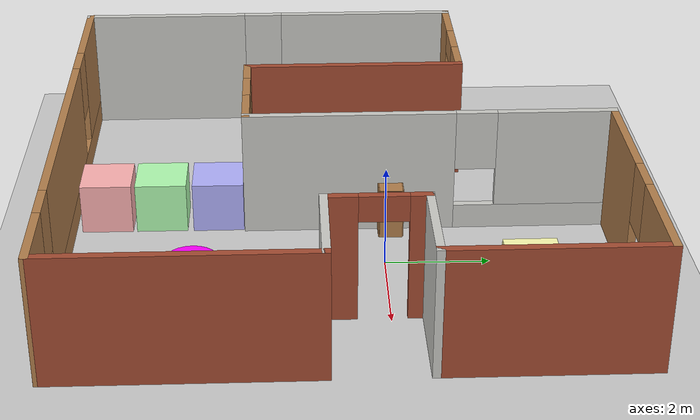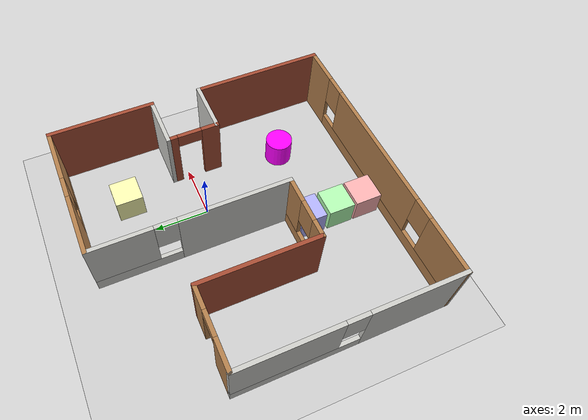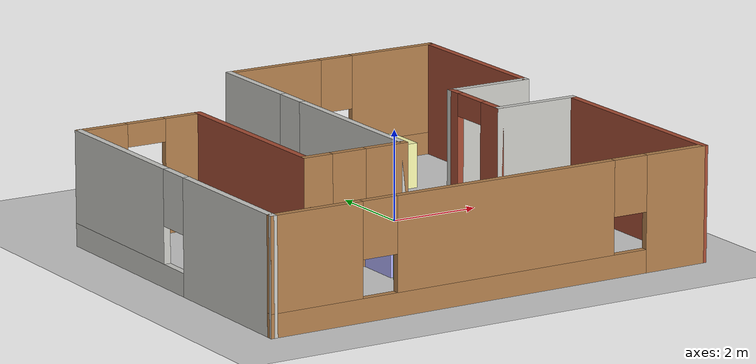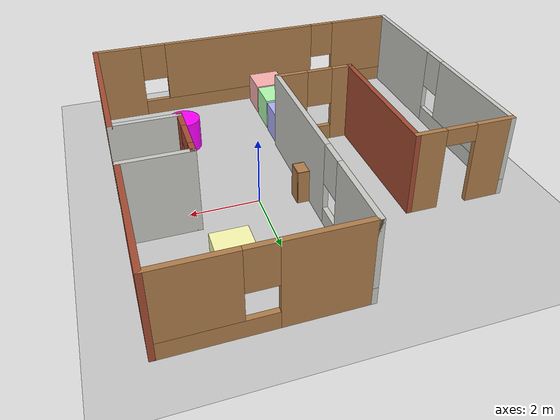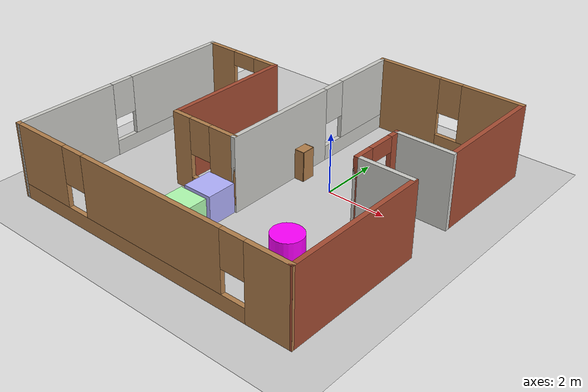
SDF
<sdf version="1.6">
 <world name="default">
  <light name="sun" type="directional">
   <pose>0 0 10 0 -0 0</pose>
   <diffuse>0.8 0.8 0.8 1</diffuse>
   <specular>0.1 0.1 0.1 1</specular>
   <attenuation>
    <range>1000</range>
    <constant>0.9</constant>
    <linear>0.01</linear>
    <quadratic>0.001</quadratic>
   </attenuation>
   <direction>-0.5 0.5 -1</direction>
  </light>
  <model name="ground_plane">
   <static>1</static>
   <link name="link">
    <collision name="collision">
     <geometry><plane><normal>0 0 1</normal><size>100 100</size></plane></geometry>
     <surface><friction><ode><mu>100</mu><mu2>50</mu2></ode></friction></surface>
    </collision>
    <visual name="visual">
     <cast_shadows>0</cast_shadows>
     <geometry><plane><normal>0 0 1</normal><size>100 100</size></plane></geometry>
     <material>
      <script><uri>file://media/materials/scripts/gazebo.material</uri><name>Gazebo/Grey</name></script>
     </material>
    </visual>
   </link>
  </model>
  <gravity>0 0 -9.8</gravity>
  <magnetic_field>6e-06 2.3e-05 -4.2e-05</magnetic_field>
  <atmosphere type="adiabatic"/>
  <physics name="default_physics" default="0" type="ode">
   <max_step_size>0.001</max_step_size>
   <real_time_factor>1</real_time_factor>
   <real_time_update_rate>1000</real_time_update_rate>
  </physics>
  <scene><ambient>0.4 0.4 0.4 1</ambient><background>0.7 0.7 0.7 1</background><shadows>1</shadows></scene>
  <spherical_coordinates>
   <surface_model>EARTH_WGS84</surface_model>
   <latitude_deg>0</latitude_deg>
   <longitude_deg>0</longitude_deg>
   <elevation>0</elevation>
   <heading_deg>0</heading_deg>
  </spherical_coordinates>
  <model name="Untitled">
   <pose>-1.45557 -0.81421 0 0 -0 0</pose>
   <link name="Wall_1">
    <pose>-5.15 -1.37482 0 0 -0 1.5708</pose>
    <visual name="Wall_1_Visual_0">
     <pose>-2.26316 0 1.25 0 -0 0</pose>
     <geometry><box><size>3.47367 0.15 2.5</size></box></geometry>
     <material>
      <script><uri>file://media/materials/scripts/gazebo.material</uri><name>Gazebo/CeilingTiled</name></script>
      <ambient>0.435294 0.796078 0.67451 1</ambient>
     </material>
     <meta><layer>0</layer></meta>
    </visual>
    <collision name="Wall_1_Collision_0">
     <geometry><box><size>3.47367 0.15 2.5</size></box></geometry>
     <pose>-2.26316 0 1.25 0 -0 0</pose>
    </collision>
    <visual name="Wall_1_Visual_1">
     <pose>1.73684 0 0.25 0 -0 0</pose>
     <geometry><box><size>4.52633 0.15 0.5</size></box></geometry>
     <material>
      <script><uri>file://media/materials/scripts/gazebo.material</uri><name>Gazebo/CeilingTiled</name></script>
      <ambient>0.435294 0.796078 0.67451 1</ambient>
     </material>
     <meta><layer>0</layer></meta>
    </visual>
    <collision name="Wall_1_Collision_1">
     <geometry><box><size>4.52633 0.15 0.5</size></box></geometry>
     <pose>1.73684 0 0.25 0 -0 0</pose>
    </collision>
    <visual name="Wall_1_Visual_2">
     <pose>2.13684 0 1.5 0 -0 0</pose>
     <geometry><box><size>3.72633 0.15 2</size></box></geometry>
     <material>
      <script><uri>file://media/materials/scripts/gazebo.material</uri><name>Gazebo/CeilingTiled</name></script>
      <ambient>0.435294 0.796078 0.67451 1</ambient>
     </material>
     <meta><layer>0</layer></meta>
    </visual>
    <collision name="Wall_1_Collision_2">
     <geometry><box><size>3.72633 0.15 2</size></box></geometry>
     <pose>2.13684 0 1.5 0 -0 0</pose>
    </collision>
    <visual name="Wall_1_Visual_3">
     <pose>-0.126327 0 1.9 0 -0 0</pose>
     <geometry><box><size>0.8 0.15 1.2</size></box></geometry>
     <material>
      <script><uri>file://media/materials/scripts/gazebo.material</uri><name>Gazebo/CeilingTiled</name></script>
      <ambient>0.435294 0.796078 0.67451 1</ambient>
     </material>
     <meta><layer>0</layer></meta>
    </visual>
    <collision name="Wall_1_Collision_3">
     <geometry><box><size>0.8 0.15 1.2</size></box></geometry>
     <pose>-0.126327 0 1.9 0 -0 0</pose>
    </collision>
   </link>
   <link name="Wall_10">
    <collision name="Wall_10_Collision">
     <geometry><box><size>2 0.15 2.5</size></box></geometry>
     <pose>0 0 1.25 0 -0 0</pose>
    </collision>
    <visual name="Wall_10_Visual">
     <pose>0 0 1.25 0 -0 0</pose>
     <geometry><box><size>2 0.15 2.5</size></box></geometry>
     <material>
      <script><uri>file://media/materials/scripts/gazebo.material</uri><name>Gazebo/CeilingTiled</name></script>
      <ambient>0.435294 0.796078 0.67451 1</ambient>
     </material>
     <meta><layer>0</layer></meta>
    </visual>
    <pose>4.225 -0.399819 0 0 -0 0</pose>
   </link>
   <link name="Wall_11">
    <collision name="Wall_11_Collision">
     <geometry><box><size>5 0.15 2.5</size></box></geometry>
     <pose>0 0 1.25 0 -0 0</pose>
    </collision>
    <visual name="Wall_11_Visual">
     <pose>0 0 1.25 0 -0 0</pose>
     <geometry><box><size>5 0.15 2.5</size></box></geometry>
     <material>
      <script><uri>file://media/materials/scripts/gazebo.material</uri><name>Gazebo/Bricks</name></script>
      <ambient>0.996078 0.47451 0.0196078 1</ambient>
     </material>
     <meta><layer>0</layer></meta>
    </visual>
    <pose>5.15 -2.82482 0 0 0 -1.5708</pose>
   </link>
   <link name="Wall_12">
    <pose>0 -5.27482 0 0 0 -3.13674</pose>
    <visual name="Wall_12_Visual_0">
     <pose>-4.46894 0 1.25 0 -0 0</pose>
     <geometry><box><size>1.51223 0.15 2.5</size></box></geometry>
     <material>
      <script><uri>file://media/materials/scripts/gazebo.material</uri><name>Gazebo/Wood</name></script>
      <ambient>0.996078 0.47451 0.0196078 1</ambient>
     </material>
     <meta><layer>0</layer></meta>
    </visual>
    <collision name="Wall_12_Collision_0">
     <geometry><box><size>1.51223 0.15 2.5</size></box></geometry>
     <pose>-4.46894 0 1.25 0 -0 0</pose>
    </collision>
    <visual name="Wall_12_Visual_1">
     <pose>0.756117 0 0.25 0 -0 0</pose>
     <geometry><box><size>8.93789 0.15 0.5</size></box></geometry>
     <material>
      <script><uri>file://media/materials/scripts/gazebo.material</uri><name>Gazebo/Wood</name></script>
      <ambient>0.996078 0.47451 0.0196078 1</ambient>
     </material>
     <meta><layer>0</layer></meta>
    </visual>
    <collision name="Wall_12_Collision_1">
     <geometry><box><size>8.93789 0.15 0.5</size></box></geometry>
     <pose>0.756117 0 0.25 0 -0 0</pose>
    </collision>
    <visual name="Wall_12_Visual_2">
     <pose>-0.306587 0 1.5 0 -0 0</pose>
     <geometry><box><size>5.21248 0.15 2</size></box></geometry>
     <material>
      <script><uri>file://media/materials/scripts/gazebo.material</uri><name>Gazebo/Wood</name></script>
      <ambient>0.996078 0.47451 0.0196078 1</ambient>
     </material>
     <meta><layer>0</layer></meta>
    </visual>
    <collision name="Wall_12_Collision_2">
     <geometry><box><size>5.21248 0.15 2</size></box></geometry>
     <pose>-0.306587 0 1.5 0 -0 0</pose>
    </collision>
    <visual name="Wall_12_Visual_3">
     <pose>4.16236 0 1.5 0 -0 0</pose>
     <geometry><box><size>2.12541 0.15 2</size></box></geometry>
     <material>
      <script><uri>file://media/materials/scripts/gazebo.material</uri><name>Gazebo/Wood</name></script>
      <ambient>0.996078 0.47451 0.0196078 1</ambient>
     </material>
     <meta><layer>0</layer></meta>
    </visual>
    <collision name="Wall_12_Collision_3">
     <geometry><box><size>2.12541 0.15 2</size></box></geometry>
     <pose>4.16236 0 1.5 0 -0 0</pose>
    </collision>
    <visual name="Wall_12_Visual_4">
     <pose>-3.31283 0 1.9 0 -0 0</pose>
     <geometry><box><size>0.8 0.15 1.2</size></box></geometry>
     <material>
      <script><uri>file://media/materials/scripts/gazebo.material</uri><name>Gazebo/Wood</name></script>
      <ambient>0.996078 0.47451 0.0196078 1</ambient>
     </material>
     <meta><layer>0</layer></meta>
    </visual>
    <collision name="Wall_12_Collision_4">
     <geometry><box><size>0.8 0.15 1.2</size></box></geometry>
     <pose>-3.31283 0 1.9 0 -0 0</pose>
    </collision>
    <visual name="Wall_12_Visual_5">
     <pose>2.69965 0 1.9 0 -0 0</pose>
     <geometry><box><size>0.8 0.15 1.2</size></box></geometry>
     <material>
      <script><uri>file://media/materials/scripts/gazebo.material</uri><name>Gazebo/Wood</name></script>
      <ambient>0.996078 0.47451 0.0196078 1</ambient>
     </material>
     <meta><layer>0</layer></meta>
    </visual>
    <collision name="Wall_12_Collision_5">
     <geometry><box><size>0.8 0.15 1.2</size></box></geometry>
     <pose>2.69965 0 1.9 0 -0 0</pose>
    </collision>
   </link>
   <link name="Wall_2">
    <pose>-3.725 2.55018 0 0 -0 0</pose>
    <visual name="Wall_2_Visual_0">
     <pose>-0.914343 0 1.25 0 -0 0</pose>
     <geometry><box><size>1.17131 0.15 2.5</size></box></geometry>
     <material>
      <script><uri>file://media/materials/scripts/gazebo.material</uri><name>Gazebo/Wood</name></script>
      <ambient>1 1 1 1</ambient>
     </material>
     <meta><layer>0</layer></meta>
    </visual>
    <collision name="Wall_2_Collision_0">
     <geometry><box><size>1.17131 0.15 2.5</size></box></geometry>
     <pose>-0.914343 0 1.25 0 -0 0</pose>
    </collision>
    <visual name="Wall_2_Visual_1">
     <pose>1.03566 0 1.25 0 -0 0</pose>
     <geometry><box><size>0.928686 0.15 2.5</size></box></geometry>
     <material>
      <script><uri>file://media/materials/scripts/gazebo.material</uri><name>Gazebo/Wood</name></script>
      <ambient>1 1 1 1</ambient>
     </material>
     <meta><layer>0</layer></meta>
    </visual>
    <collision name="Wall_2_Collision_1">
     <geometry><box><size>0.928686 0.15 2.5</size></box></geometry>
     <pose>1.03566 0 1.25 0 -0 0</pose>
    </collision>
    <visual name="Wall_2_Visual_2">
     <pose>0.121314 0 2.25 0 -0 0</pose>
     <geometry><box><size>0.9 0.15 0.5</size></box></geometry>
     <material>
      <script><uri>file://media/materials/scripts/gazebo.material</uri><name>Gazebo/Wood</name></script>
      <ambient>1 1 1 1</ambient>
     </material>
     <meta><layer>0</layer></meta>
    </visual>
    <collision name="Wall_2_Collision_2">
     <geometry><box><size>0.9 0.15 0.5</size></box></geometry>
     <pose>0.121314 0 2.25 0 -0 0</pose>
    </collision>
   </link>
   <link name="Wall_3">
    <collision name="Wall_3_Collision">
     <geometry><box><size>4.5 0.15 2.5</size></box></geometry>
     <pose>0 0 1.25 0 -0 0</pose>
    </collision>
    <visual name="Wall_3_Visual">
     <pose>0 0 1.25 0 -0 0</pose>
     <geometry><box><size>4.5 0.15 2.5</size></box></geometry>
     <material>
      <script><uri>file://media/materials/scripts/gazebo.material</uri><name>Gazebo/Bricks</name></script>
      <ambient>0.435294 0.796078 0.67451 1</ambient>
     </material>
     <meta><layer>0</layer></meta>
    </visual>
    <pose>-2.3 0.375181 0 0 0 -1.5708</pose>
   </link>
   <link name="Wall_4">
    <pose>-1.125 -1.79982 0 0 -0 0</pose>
    <visual name="Wall_4_Visual_0">
     <pose>-0.907234 0 1.25 0 -0 0</pose>
     <geometry><box><size>0.685531 0.15 2.5</size></box></geometry>
     <material>
      <script><uri>file://media/materials/scripts/gazebo.material</uri><name>Gazebo/Wood</name></script>
      <ambient>1 1 1 1</ambient>
     </material>
     <meta><layer>0</layer></meta>
    </visual>
    <collision name="Wall_4_Collision_0">
     <geometry><box><size>0.685531 0.15 2.5</size></box></geometry>
     <pose>-0.907234 0 1.25 0 -0 0</pose>
    </collision>
    <visual name="Wall_4_Visual_1">
     <pose>0.342766 0 0.25 0 -0 0</pose>
     <geometry><box><size>1.81447 0.15 0.5</size></box></geometry>
     <material>
      <script><uri>file://media/materials/scripts/gazebo.material</uri><name>Gazebo/Wood</name></script>
      <ambient>1 1 1 1</ambient>
     </material>
     <meta><layer>0</layer></meta>
    </visual>
    <collision name="Wall_4_Collision_1">
     <geometry><box><size>1.81447 0.15 0.5</size></box></geometry>
     <pose>0.342766 0 0.25 0 -0 0</pose>
    </collision>
    <visual name="Wall_4_Visual_2">
     <pose>0.742766 0 1.5 0 -0 0</pose>
     <geometry><box><size>1.01447 0.15 2</size></box></geometry>
     <material>
      <script><uri>file://media/materials/scripts/gazebo.material</uri><name>Gazebo/Wood</name></script>
      <ambient>1 1 1 1</ambient>
     </material>
     <meta><layer>0</layer></meta>
    </visual>
    <collision name="Wall_4_Collision_2">
     <geometry><box><size>1.01447 0.15 2</size></box></geometry>
     <pose>0.742766 0 1.5 0 -0 0</pose>
    </collision>
    <visual name="Wall_4_Visual_3">
     <pose>-0.164469 0 1.9 0 -0 0</pose>
     <geometry><box><size>0.8 0.15 1.2</size></box></geometry>
     <material>
      <script><uri>file://media/materials/scripts/gazebo.material</uri><name>Gazebo/Wood</name></script>
      <ambient>1 1 1 1</ambient>
     </material>
     <meta><layer>0</layer></meta>
    </visual>
    <collision name="Wall_4_Collision_3">
     <geometry><box><size>0.8 0.15 1.2</size></box></geometry>
     <pose>-0.164469 0 1.9 0 -0 0</pose>
    </collision>
   </link>
   <link name="Wall_5">
    <pose>0.05 1.75018 0 0 -0 1.5708</pose>
    <visual name="Wall_5_Visual_0">
     <pose>-1.56335 0 1.25 0 -0 0</pose>
     <geometry><box><size>4.1233 0.15 2.5</size></box></geometry>
     <material>
      <script><uri>file://media/materials/scripts/gazebo.material</uri><name>Gazebo/CeilingTiled</name></script>
      <ambient>1 0.764706 0.305882 1</ambient>
     </material>
     <meta><layer>0</layer></meta>
    </visual>
    <collision name="Wall_5_Collision_0">
     <geometry><box><size>4.1233 0.15 2.5</size></box></geometry>
     <pose>-1.56335 0 1.25 0 -0 0</pose>
    </collision>
    <visual name="Wall_5_Visual_1">
     <pose>2.06165 0 0.25 0 -0 0</pose>
     <geometry><box><size>3.1267 0.15 0.5</size></box></geometry>
     <material>
      <script><uri>file://media/materials/scripts/gazebo.material</uri><name>Gazebo/CeilingTiled</name></script>
      <ambient>1 0.764706 0.305882 1</ambient>
     </material>
     <meta><layer>0</layer></meta>
    </visual>
    <collision name="Wall_5_Collision_1">
     <geometry><box><size>3.1267 0.15 0.5</size></box></geometry>
     <pose>2.06165 0 0.25 0 -0 0</pose>
    </collision>
    <visual name="Wall_5_Visual_2">
     <pose>2.46165 0 1.5 0 -0 0</pose>
     <geometry><box><size>2.3267 0.15 2</size></box></geometry>
     <material>
      <script><uri>file://media/materials/scripts/gazebo.material</uri><name>Gazebo/CeilingTiled</name></script>
      <ambient>1 0.764706 0.305882 1</ambient>
     </material>
     <meta><layer>0</layer></meta>
    </visual>
    <collision name="Wall_5_Collision_2">
     <geometry><box><size>2.3267 0.15 2</size></box></geometry>
     <pose>2.46165 0 1.5 0 -0 0</pose>
    </collision>
    <visual name="Wall_5_Visual_3">
     <pose>0.898304 0 1.9 0 -0 0</pose>
     <geometry><box><size>0.8 0.15 1.2</size></box></geometry>
     <material>
      <script><uri>file://media/materials/scripts/gazebo.material</uri><name>Gazebo/CeilingTiled</name></script>
      <ambient>1 0.764706 0.305882 1</ambient>
     </material>
     <meta><layer>0</layer></meta>
    </visual>
    <collision name="Wall_5_Collision_3">
     <geometry><box><size>0.8 0.15 1.2</size></box></geometry>
     <pose>0.898304 0 1.9 0 -0 0</pose>
    </collision>
   </link>
   <link name="Wall_6">
    <pose>2.6 5.30018 0 0 -0 0</pose>
    <visual name="Wall_6_Visual_0">
     <pose>-1.46222 0 1.25 0 -0 0</pose>
     <geometry><box><size>2.32556 0.15 2.5</size></box></geometry>
     <material>
      <script><uri>file://media/materials/scripts/gazebo.material</uri><name>Gazebo/Wood</name></script>
      <ambient>0.435294 0.796078 0.67451 1</ambient>
     </material>
     <meta><layer>0</layer></meta>
    </visual>
    <collision name="Wall_6_Collision_0">
     <geometry><box><size>2.32556 0.15 2.5</size></box></geometry>
     <pose>-1.46222 0 1.25 0 -0 0</pose>
    </collision>
    <visual name="Wall_6_Visual_1">
     <pose>1.16278 0 0.25 0 -0 0</pose>
     <geometry><box><size>2.92444 0.15 0.5</size></box></geometry>
     <material>
      <script><uri>file://media/materials/scripts/gazebo.material</uri><name>Gazebo/Wood</name></script>
      <ambient>0.435294 0.796078 0.67451 1</ambient>
     </material>
     <meta><layer>0</layer></meta>
    </visual>
    <collision name="Wall_6_Collision_1">
     <geometry><box><size>2.92444 0.15 0.5</size></box></geometry>
     <pose>1.16278 0 0.25 0 -0 0</pose>
    </collision>
    <visual name="Wall_6_Visual_2">
     <pose>1.56278 0 1.5 0 -0 0</pose>
     <geometry><box><size>2.12444 0.15 2</size></box></geometry>
     <material>
      <script><uri>file://media/materials/scripts/gazebo.material</uri><name>Gazebo/Wood</name></script>
      <ambient>0.435294 0.796078 0.67451 1</ambient>
     </material>
     <meta><layer>0</layer></meta>
    </visual>
    <collision name="Wall_6_Collision_2">
     <geometry><box><size>2.12444 0.15 2</size></box></geometry>
     <pose>1.56278 0 1.5 0 -0 0</pose>
    </collision>
    <visual name="Wall_6_Visual_3">
     <pose>0.100561 0 1.9 0 -0 0</pose>
     <geometry><box><size>0.8 0.15 1.2</size></box></geometry>
     <material>
      <script><uri>file://media/materials/scripts/gazebo.material</uri><name>Gazebo/Wood</name></script>
      <ambient>0.435294 0.796078 0.67451 1</ambient>
     </material>
     <meta><layer>0</layer></meta>
    </visual>
    <collision name="Wall_6_Collision_3">
     <geometry><box><size>0.8 0.15 1.2</size></box></geometry>
     <pose>0.100561 0 1.9 0 -0 0</pose>
    </collision>
   </link>
   <link name="Wall_7">
    <collision name="Wall_7_Collision">
     <geometry><box><size>4 0.15 2.5</size></box></geometry>
     <pose>0 0 1.25 0 -0 0</pose>
    </collision>
    <visual name="Wall_7_Visual">
     <pose>0 0 1.25 0 -0 0</pose>
     <geometry><box><size>4 0.15 2.5</size></box></geometry>
     <material>
      <script><uri>file://media/materials/scripts/gazebo.material</uri><name>Gazebo/Bricks</name></script>
      <ambient>0.760784 0.662745 0.627451 1</ambient>
     </material>
     <meta><layer>0</layer></meta>
    </visual>
    <pose>5.15 3.37518 0 0 0 -1.5708</pose>
   </link>
   <link name="Wall_8">
    <collision name="Wall_8_Collision">
     <geometry><box><size>2 0.15 2.5</size></box></geometry>
     <pose>0 0 1.25 0 -0 0</pose>
    </collision>
    <visual name="Wall_8_Visual">
     <pose>0 0 1.25 0 -0 0</pose>
     <geometry><box><size>2 0.15 2.5</size></box></geometry>
     <material>
      <script><uri>file://media/materials/scripts/gazebo.material</uri><name>Gazebo/CeilingTiled</name></script>
      <ambient>0.760784 0.662745 0.627451 1</ambient>
     </material>
     <meta><layer>0</layer></meta>
    </visual>
    <pose>4.225 1.45018 0 0 -0 3.14159</pose>
   </link>
   <link name="Wall_9">
    <pose>3.3 0.525181 0 0 0 -1.5708</pose>
    <visual name="Wall_9_Visual_0">
     <pose>-0.789145 0 1.25 0 -0 0</pose>
     <geometry><box><size>0.421711 0.15 2.5</size></box></geometry>
     <material>
      <script><uri>file://media/materials/scripts/gazebo.material</uri><name>Gazebo/Bricks</name></script>
      <ambient>0.435294 0.796078 0.67451 1</ambient>
     </material>
     <meta><layer>0</layer></meta>
    </visual>
    <collision name="Wall_9_Collision_0">
     <geometry><box><size>0.421711 0.15 2.5</size></box></geometry>
     <pose>-0.789145 0 1.25 0 -0 0</pose>
    </collision>
    <visual name="Wall_9_Visual_1">
     <pose>0.660855 0 1.25 0 -0 0</pose>
     <geometry><box><size>0.678289 0.15 2.5</size></box></geometry>
     <material>
      <script><uri>file://media/materials/scripts/gazebo.material</uri><name>Gazebo/Bricks</name></script>
      <ambient>0.435294 0.796078 0.67451 1</ambient>
     </material>
     <meta><layer>0</layer></meta>
    </visual>
    <collision name="Wall_9_Collision_1">
     <geometry><box><size>0.678289 0.15 2.5</size></box></geometry>
     <pose>0.660855 0 1.25 0 -0 0</pose>
    </collision>
    <visual name="Wall_9_Visual_2">
     <pose>-0.128289 0 2.25 0 -0 0</pose>
     <geometry><box><size>0.9 0.15 0.5</size></box></geometry>
     <material>
      <script><uri>file://media/materials/scripts/gazebo.material</uri><name>Gazebo/Bricks</name></script>
      <ambient>0.435294 0.796078 0.67451 1</ambient>
     </material>
     <meta><layer>0</layer></meta>
    </visual>
    <collision name="Wall_9_Collision_2">
     <geometry><box><size>0.9 0.15 0.5</size></box></geometry>
     <pose>-0.128289 0 2.25 0 -0 0</pose>
    </collision>
   </link>
   <static>1</static>
  </model>
  <model name="unit_box_0">
   <link name="link">
    <inertial>
     <mass>100</mass>
     <inertia>
      <ixx>0.166667</ixx>
      <ixy>0</ixy>
      <ixz>0</ixz>
      <iyy>0.166667</iyy>
      <iyz>0</iyz>
      <izz>0.166667</izz>
     </inertia>
    </inertial>
    <visual name="visual">
     <geometry><box><size>1 1 1</size></box></geometry>
     <material>
      <script><name>Gazebo/Grey</name><uri>file://media/materials/scripts/gazebo.material</uri></script>
      <shader type="pixel"><normal_map>__default__</normal_map></shader>
      <ambient>0.3 0.3 1 1</ambient>
      <diffuse>0.7 0.7 1 1</diffuse>
      <specular>0.01 0.01 0.01 1</specular>
      <emissive>0 0 0 1</emissive>
     </material>
    </visual>
    <collision name="collision">
     <geometry><box><size>1 1 1</size></box></geometry>
     <surface>
      <friction>
       <ode><mu>1</mu><mu2>1</mu2><fdir1>0 0 0</fdir1><slip1>0</slip1><slip2>0</slip2></ode>
       <torsional>
        <coefficient>1</coefficient>
        <patch_radius>0</patch_radius>
        <surface_radius>0</surface_radius>
        <use_patch_radius>1</use_patch_radius>
        <ode><slip>0</slip></ode>
       </torsional>
      </friction>
      <bounce><restitution_coefficient>0</restitution_coefficient><threshold>1e+06</threshold></bounce>
      <contact>
       <collide_without_contact>0</collide_without_contact>
       <collide_without_contact_bitmask>1</collide_without_contact_bitmask>
       <collide_bitmask>1</collide_bitmask>
       <ode>
        <soft_cfm>0</soft_cfm>
        <soft_erp>0.2</soft_erp>
        <kp>1e+13</kp>
        <kd>1</kd>
        <max_vel>0.01</max_vel>
        <min_depth>0</min_depth>
       </ode>
       <bullet>
        <split_impulse>1</split_impulse>
        <split_impulse_penetration_threshold>-0.01</split_impulse_penetration_threshold>
        <soft_cfm>0</soft_cfm>
        <soft_erp>0.2</soft_erp>
        <kp>1e+13</kp>
        <kd>1</kd>
       </bullet>
      </contact>
     </surface>
    </collision>
   </link>
   <link name="link_0">
    <pose>-0.01132 -1.118 -0 0 -0 0</pose>
    <inertial>
     <mass>100</mass>
     <inertia>
      <ixx>0.166667</ixx>
      <ixy>0</ixy>
      <ixz>0</ixz>
      <iyy>0.166667</iyy>
      <iyz>0</iyz>
      <izz>0.166667</izz>
     </inertia>
    </inertial>
    <visual name="visual">
     <geometry><box><size>1 1 1</size></box></geometry>
     <material>
      <lighting>1</lighting>
      <script><uri>file://media/materials/scripts/gazebo.material</uri><name>Gazebo/Grey</name></script>
      <shader type="pixel"><normal_map>__default__</normal_map></shader>
      <ambient>0.3 1 0.3 1</ambient>
      <diffuse>0.7 1 0.7 1</diffuse>
      <specular>0.01 0.01 0.01 1</specular>
      <emissive>0 0 0 1</emissive>
     </material>
    </visual>
    <collision name="collision">
     <geometry><box><size>1 1 1</size></box></geometry>
     <surface>
      <friction>
       <ode><mu>1</mu><mu2>1</mu2><fdir1>0 0 0</fdir1><slip1>0</slip1><slip2>0</slip2></ode>
       <torsional>
        <coefficient>1</coefficient>
        <patch_radius>0</patch_radius>
        <surface_radius>0</surface_radius>
        <use_patch_radius>1</use_patch_radius>
        <ode><slip>0</slip></ode>
       </torsional>
      </friction>
      <bounce><restitution_coefficient>0</restitution_coefficient><threshold>1e+06</threshold></bounce>
      <contact>
       <collide_without_contact>0</collide_without_contact>
       <collide_without_contact_bitmask>1</collide_without_contact_bitmask>
       <collide_bitmask>1</collide_bitmask>
       <ode>
        <soft_cfm>0</soft_cfm>
        <soft_erp>0.2</soft_erp>
        <kp>1e+13</kp>
        <kd>1</kd>
        <max_vel>0.01</max_vel>
        <min_depth>0</min_depth>
       </ode>
       <bullet>
        <split_impulse>1</split_impulse>
        <split_impulse_penetration_threshold>-0.01</split_impulse_penetration_threshold>
        <soft_cfm>0</soft_cfm>
        <soft_erp>0.2</soft_erp>
        <kp>1e+13</kp>
        <kd>1</kd>
       </bullet>
      </contact>
     </surface>
    </collision>
   </link>
   <link name="link_1">
    <pose>-0.013889 -2.1942 -0 0 -0 0</pose>
    <inertial>
     <mass>100</mass>
     <inertia>
      <ixx>0.166667</ixx>
      <ixy>0</ixy>
      <ixz>0</ixz>
      <iyy>0.166667</iyy>
      <iyz>0</iyz>
      <izz>0.166667</izz>
     </inertia>
    </inertial>
    <visual name="visual">
     <geometry><box><size>1 1 1</size></box></geometry>
     <material>
      <lighting>1</lighting>
      <script><uri>file://media/materials/scripts/gazebo.material</uri><name>Gazebo/Grey</name></script>
      <shader type="pixel"><normal_map>__default__</normal_map></shader>
      <ambient>0.3 0.3 0.3 1</ambient>
      <diffuse>1 0.7 0.7 1</diffuse>
      <specular>1 0.01 0.01 1</specular>
      <emissive>0 0 0 1</emissive>
     </material>
    </visual>
    <collision name="collision">
     <geometry><box><size>1 1 1</size></box></geometry>
     <surface>
      <friction>
       <ode><mu>1</mu><mu2>1</mu2><fdir1>0 0 0</fdir1><slip1>0</slip1><slip2>0</slip2></ode>
       <torsional>
        <coefficient>1</coefficient>
        <patch_radius>0</patch_radius>
        <surface_radius>0</surface_radius>
        <use_patch_radius>1</use_patch_radius>
        <ode><slip>0</slip></ode>
       </torsional>
      </friction>
      <bounce><restitution_coefficient>0</restitution_coefficient><threshold>1e+06</threshold></bounce>
      <contact>
       <collide_without_contact>0</collide_without_contact>
       <collide_without_contact_bitmask>1</collide_without_contact_bitmask>
       <collide_bitmask>1</collide_bitmask>
       <ode>
        <soft_cfm>0</soft_cfm>
        <soft_erp>0.2</soft_erp>
        <kp>1e+13</kp>
        <kd>1</kd>
        <max_vel>0.01</max_vel>
        <min_depth>0</min_depth>
       </ode>
       <bullet>
        <split_impulse>1</split_impulse>
        <split_impulse_penetration_threshold>-0.01</split_impulse_penetration_threshold>
        <soft_cfm>0</soft_cfm>
        <soft_erp>0.2</soft_erp>
        <kp>1e+13</kp>
        <kd>1</kd>
       </bullet>
      </contact>
     </surface>
    </collision>
   </link>
   <static>0</static>
   <pose>-1.88098 -3.20032 0.5 0 -0 0</pose>
  </model>
  <model name="unit_box">
   <link name="link">
    <inertial>
     <mass>100</mass>
     <inertia>
      <ixx>0.166667</ixx>
      <ixy>0</ixy>
      <ixz>0</ixz>
      <iyy>0.166667</iyy>
      <iyz>0</iyz>
      <izz>0.166667</izz>
     </inertia>
    </inertial>
    <visual name="visual">
     <geometry><box><size>1 1 1</size></box></geometry>
     <material>
      <script><name>Gazebo/Grey</name><uri>file://media/materials/scripts/gazebo.material</uri></script>
      <shader type="pixel"><normal_map>__default__</normal_map></shader>
      <ambient>1 1 0.3 1</ambient>
      <diffuse>1 1 0.7 1</diffuse>
      <specular>0.01 0.01 0.01 1</specular>
      <emissive>0 0 0 1</emissive>
     </material>
    </visual>
    <collision name="collision">
     <geometry><box><size>1 1 1</size></box></geometry>
     <surface>
      <friction>
       <ode><mu>1</mu><mu2>1</mu2><fdir1>0 0 0</fdir1><slip1>0</slip1><slip2>0</slip2></ode>
       <torsional>
        <coefficient>1</coefficient>
        <patch_radius>0</patch_radius>
        <surface_radius>0</surface_radius>
        <use_patch_radius>1</use_patch_radius>
        <ode><slip>0</slip></ode>
       </torsional>
      </friction>
      <bounce><restitution_coefficient>0</restitution_coefficient><threshold>1e+06</threshold></bounce>
      <contact>
       <collide_without_contact>0</collide_without_contact>
       <collide_without_contact_bitmask>1</collide_without_contact_bitmask>
       <collide_bitmask>1</collide_bitmask>
       <ode>
        <soft_cfm>0</soft_cfm>
        <soft_erp>0.2</soft_erp>
        <kp>1e+13</kp>
        <kd>1</kd>
        <max_vel>0.01</max_vel>
        <min_depth>0</min_depth>
       </ode>
       <bullet>
        <split_impulse>1</split_impulse>
        <split_impulse_penetration_threshold>-0.01</split_impulse_penetration_threshold>
        <soft_cfm>0</soft_cfm>
        <soft_erp>0.2</soft_erp>
        <kp>1e+13</kp>
        <kd>1</kd>
       </bullet>
      </contact>
     </surface>
    </collision>
   </link>
   <static>0</static>
   <pose>1.38414 2.59063 0.499998 1e-06 1.4e-05 -2.8e-05</pose>
  </model>
  <model name="unit_cylinder">
   <link name="link">
    <inertial>
     <mass>100</mass>
     <inertia><ixx>0.145833</ixx><ixy>0</ixy><ixz>0</ixz><iyy>0.145833</iyy><iyz>0</iyz><izz>0.125</izz></inertia>
    </inertial>
    <visual name="visual">
     <geometry><cylinder><radius>0.5</radius><length>1</length></cylinder></geometry>
     <material>
      <script><name>Gazebo/Grey</name><uri>file://media/materials/scripts/gazebo.material</uri></script>
      <shader type="pixel"><normal_map>__default__</normal_map></shader>
      <ambient>1 0 1 1</ambient>
      <diffuse>1 0 1 1</diffuse>
      <specular>0.01 0.01 0.01 1</specular>
      <emissive>0 0 0 1</emissive>
     </material>
    </visual>
    <collision name="collision">
     <geometry><cylinder><radius>0.5</radius><length>1</length></cylinder></geometry>
     <surface>
      <friction>
       <ode><mu>1</mu><mu2>1</mu2><fdir1>0 0 0</fdir1><slip1>0</slip1><slip2>0</slip2></ode>
       <torsional>
        <coefficient>1</coefficient>
        <patch_radius>0</patch_radius>
        <surface_radius>0</surface_radius>
        <use_patch_radius>1</use_patch_radius>
        <ode><slip>0</slip></ode>
       </torsional>
      </friction>
      <bounce><restitution_coefficient>0</restitution_coefficient><threshold>1e+06</threshold></bounce>
      <contact>
       <collide_without_contact>0</collide_without_contact>
       <collide_without_contact_bitmask>1</collide_without_contact_bitmask>
       <collide_bitmask>1</collide_bitmask>
       <ode>
        <soft_cfm>0</soft_cfm>
        <soft_erp>0.2</soft_erp>
        <kp>1e+13</kp>
        <kd>1</kd>
        <max_vel>0.01</max_vel>
        <min_depth>0</min_depth>
       </ode>
       <bullet>
        <split_impulse>1</split_impulse>
        <split_impulse_penetration_threshold>-0.01</split_impulse_penetration_threshold>
        <soft_cfm>0</soft_cfm>
        <soft_erp>0.2</soft_erp>
        <kp>1e+13</kp>
        <kd>1</kd>
       </bullet>
      </contact>
     </surface>
    </collision>
   </link>
   <static>0</static>
   <pose>1.40521 -3.57174 0.499998 5e-06 3e-06 0.001345</pose>
  </model>
  <model name="cabinet">
   <static>1</static>
   <link name="cabinet_bottom_plate">
    <inertial>
     <pose>0 0 -1 0 -0 0</pose>
     <inertia><ixx>2.05</ixx><ixy>0</ixy><ixz>0</ixz><iyy>2.05</iyy><iyz>0</iyz><izz>2.05</izz></inertia>
     <mass>25</mass>
    </inertial>
    <collision name="cabinet_bottom_plate_geom">
     <pose>0 0 0.01 0 -0 0</pose>
     <geometry><box><size>0.45 0.45 0.02</size></box></geometry>
    </collision>
    <visual name="cabinet_bottom_plate_geom_visual">
     <pose>0 0 0.01 0 -0 0</pose>
     <geometry><box><size>0.45 0.45 0.02</size></box></geometry>
     <material>
      <script><uri>file://media/materials/scripts/gazebo.material</uri><name>Gazebo/Wood</name></script>
     </material>
    </visual>
    <collision name="cabinet_bottom_plate_geom_cabinet_back_plate">
     <pose>0.235 0 0.51 0 -0 0</pose>
     <geometry><box><size>0.02 0.45 1.02</size></box></geometry>
    </collision>
    <visual name="cabinet_bottom_plate_geom_cabinet_back_plate_visual">
     <pose>0.235 0 0.51 0 -0 0</pose>
     <geometry><box><size>0.02 0.45 1.02</size></box></geometry>
     <material>
      <script><uri>file://media/materials/scripts/gazebo.material</uri><name>Gazebo/Wood</name></script>
     </material>
    </visual>
    <collision name="cabinet_bottom_plate_geom_cabinet_left_plate">
     <pose>0 0.235 0.51 0 -0 0</pose>
     <geometry><box><size>0.45 0.02 1.02</size></box></geometry>
    </collision>
    <visual name="cabinet_bottom_plate_geom_cabinet_left_plate_visual">
     <pose>0 0.235 0.51 0 -0 0</pose>
     <geometry><box><size>0.45 0.02 1.02</size></box></geometry>
     <material>
      <script><uri>file://media/materials/scripts/gazebo.material</uri><name>Gazebo/Wood</name></script>
     </material>
    </visual>
    <collision name="cabinet_bottom_plate_geom_cabinet_middle_plate">
     <pose>0 0 0.51 0 -0 0</pose>
     <geometry><box><size>0.45 0.45 0.02</size></box></geometry>
    </collision>
    <visual name="cabinet_bottom_plate_geom_cabinet_middle_plate_visual">
     <pose>0 0 0.51 0 -0 0</pose>
     <geometry><box><size>0.45 0.45 0.02</size></box></geometry>
     <material>
      <script><uri>file://media/materials/scripts/gazebo.material</uri><name>Gazebo/Wood</name></script>
     </material>
    </visual>
    <collision name="cabinet_bottom_plate_geom_cabinet_right_plate">
     <pose>0 -0.235 0.51 0 -0 0</pose>
     <geometry><box><size>0.45 0.02 1.02</size></box></geometry>
    </collision>
    <visual name="cabinet_bottom_plate_geom_cabinet_right_plate_visual">
     <pose>0 -0.235 0.51 0 -0 0</pose>
     <geometry><box><size>0.45 0.02 1.02</size></box></geometry>
     <material>
      <script><uri>file://media/materials/scripts/gazebo.material</uri><name>Gazebo/Wood</name></script>
     </material>
    </visual>
    <collision name="cabinet_bottom_plate_geom_cabinet_top_plate">
     <pose>0 0 1.01 0 -0 0</pose>
     <geometry><box><size>0.45 0.45 0.02</size></box></geometry>
    </collision>
    <visual name="cabinet_bottom_plate_geom_cabinet_top_plate_visual">
     <pose>0 0 1.01 0 -0 0</pose>
     <geometry><box><size>0.45 0.45 0.02</size></box></geometry>
     <material>
      <script><uri>file://media/materials/scripts/gazebo.material</uri><name>Gazebo/Wood</name></script>
     </material>
    </visual>
   </link>
   <pose>-1.22415 0.183462 0 0 -0 0</pose>
  </model>
 </world>
</sdf>
